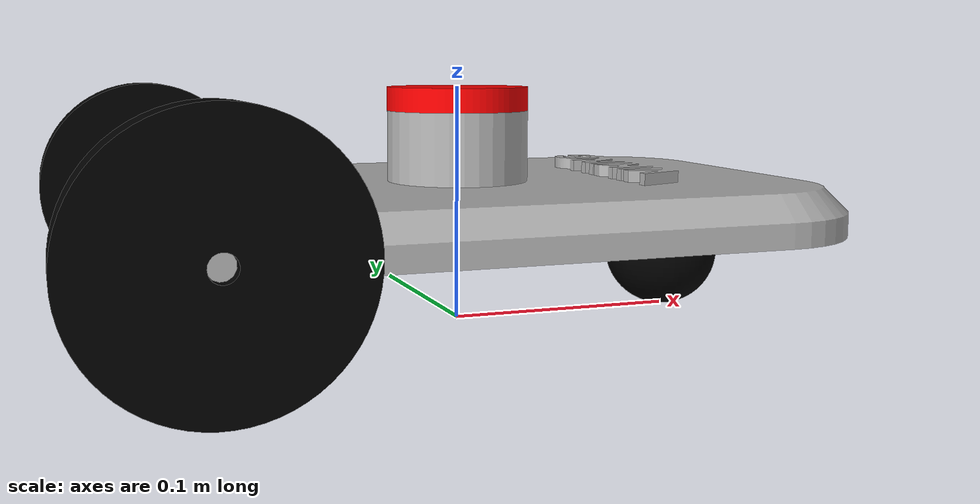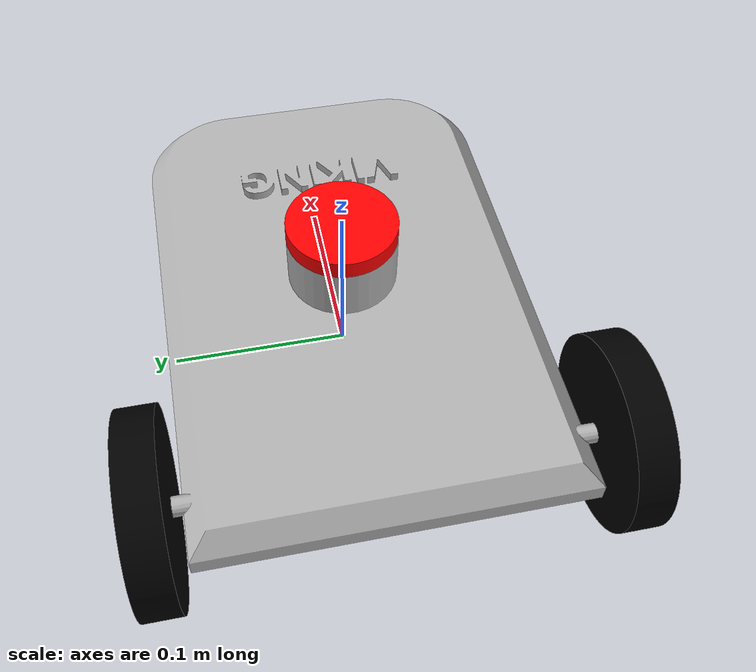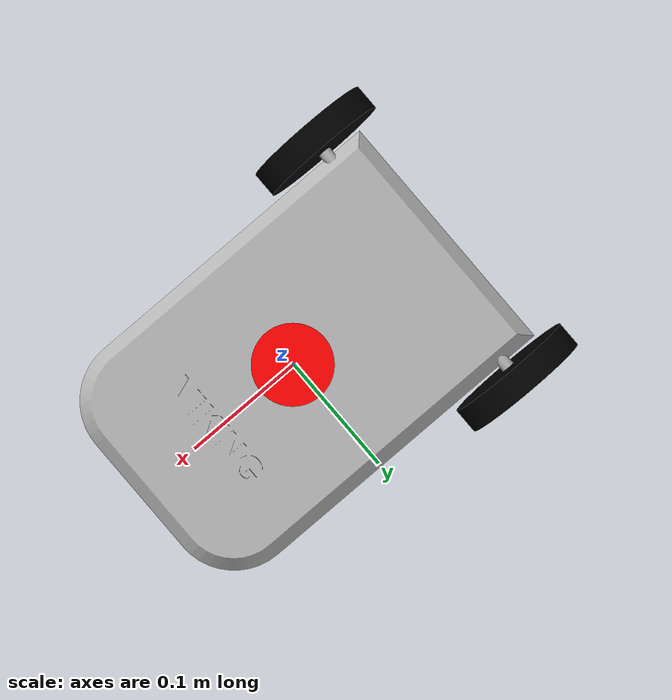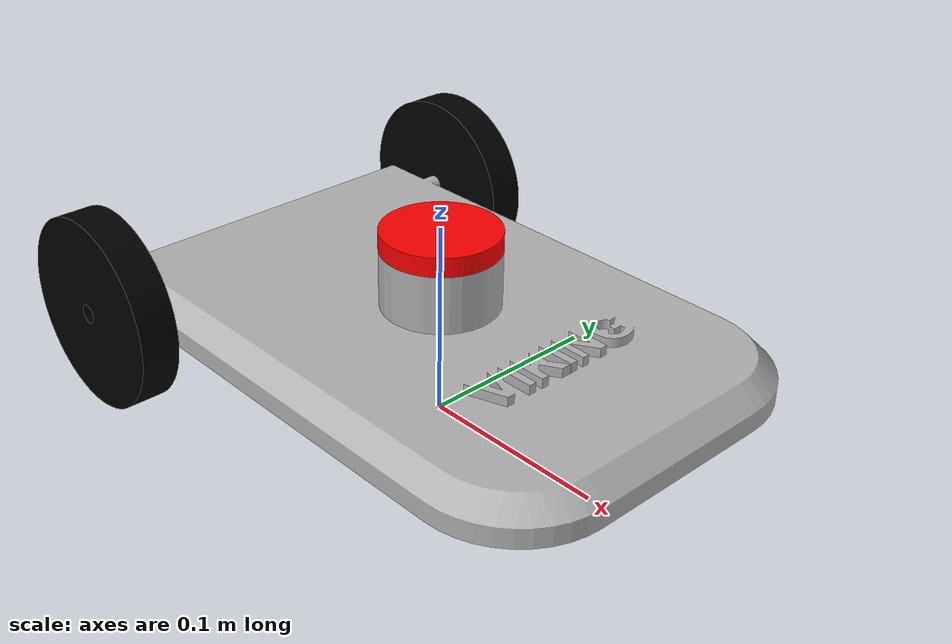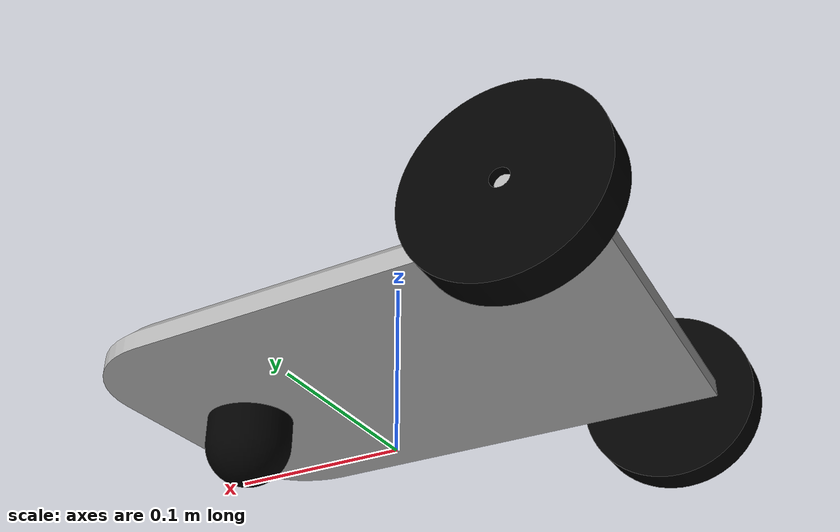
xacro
<?xml version="1.0" ?>
<robot name="nbot" xmlns:xacro="http://www.ros.org/wiki/xacro">

<xacro:include filename="$(find nbot_description)/urdf/materials.xacro" />
<xacro:include filename="$(find nbot_description)/urdf/nbot.trans" />
<xacro:include filename="$(find nbot_description)/urdf/nbot.gazebo" />
<link name="base_link">
  <inertial>
    <origin xyz="-0.002225808134467124 5.387398035171918e-06 0.05152529612945843" rpy="0 0 0"/>
    <mass value="9.612754025416804"/>
    <inertia ixx="0.028823" iyy="0.064259" izz="0.091602" ixy="-4e-06" iyz="-1e-06" ixz="-8.2e-05"/>
  </inertial>
  <visual>
    <origin xyz="0 0 0" rpy="0 0 0"/>
    <geometry>
      <mesh filename="package://nbot_description/meshes/base_link.stl" scale="0.001 0.001 0.001"/>
    </geometry>
    <material name="silver"/>
  </visual>
  <collision>
    <origin xyz="0 0 0" rpy="0 0 0"/>
    <geometry>
      <mesh filename="package://nbot_description/meshes/base_link.stl" scale="0.001 0.001 0.001"/>
    </geometry>
  </collision>
</link>

<link name="right_wheel_1">
  <inertial>
    <origin xyz="-5.245803791353865e-15 0.0049999999999999906 6.938893903907228e-18" rpy="0 0 0"/>
    <mass value="1.2207443653686525"/>
    <inertia ixx="0.000811" iyy="0.001541" izz="0.000811" ixy="0.0" iyz="-0.0" ixz="0.0"/>
  </inertial>
  <visual>
    <origin xyz="0.12 0.12 -0.05" rpy="0 0 0"/>
    <geometry>
      <mesh filename="package://nbot_description/meshes/right_wheel_1.stl" scale="0.001 0.001 0.001"/>
    </geometry>
    <material name="black"/>
  </visual>
  <collision>
    <origin xyz="0.12 0.12 -0.05" rpy="0 0 0"/>
    <geometry>
      <mesh filename="package://nbot_description/meshes/right_wheel_1.stl" scale="0.001 0.001 0.001"/>
    </geometry>
  </collision>
</link>

<link name="lefft_wheel_1">
  <inertial>
    <origin xyz="-5.245803791353865e-15 -0.005000000000000018 6.938893903907228e-18" rpy="0 0 0"/>
    <mass value="1.2207443653686525"/>
    <inertia ixx="0.000811" iyy="0.001541" izz="0.000811" ixy="0.0" iyz="-0.0" ixz="0.0"/>
  </inertial>
  <visual>
    <origin xyz="0.12 -0.12 -0.05" rpy="0 0 0"/>
    <geometry>
      <mesh filename="package://nbot_description/meshes/lefft_wheel_1.stl" scale="0.001 0.001 0.001"/>
    </geometry>
    <material name="black"/>
  </visual>
  <collision>
    <origin xyz="0.12 -0.12 -0.05" rpy="0 0 0"/>
    <geometry>
      <mesh filename="package://nbot_description/meshes/lefft_wheel_1.stl" scale="0.001 0.001 0.001"/>
    </geometry>
  </collision>
</link>

<link name="lidar_1">
  <inertial>
    <origin xyz="0.0 0.0 0.005000000000000018" rpy="0 0 0"/>
    <mass value="0.22195352097611892"/>
    <inertia ixx="5.2e-05" iyy="5.2e-05" izz="0.0001" ixy="0.0" iyz="-0.0" ixz="-0.0"/>
  </inertial>
  <visual>
    <origin xyz="-0.0 -0.0 -0.12" rpy="0 0 0"/>
    <geometry>
      <mesh filename="package://nbot_description/meshes/lidar_1.stl" scale="0.001 0.001 0.001"/>
    </geometry>
    <material name="red"/>
  </visual>
  <collision>
    <origin xyz="-0.0 -0.0 -0.12" rpy="0 0 0"/>
    <geometry>
      <mesh filename="package://nbot_description/meshes/lidar_1.stl" scale="0.001 0.001 0.001"/>
    </geometry>
  </collision>
</link>

<link name="castor_wheel_1">
  <inertial>
    <origin xyz="-0.05000000000000002 -4.57107086851739e-18 -0.01638157894736842" rpy="0 0 0"/>
    <mass value="0.4880922336280392"/>
    <inertia ixx="0.000117" iyy="0.000117" izz="0.000136" ixy="-0.0" iyz="0.0" ixz="-0.0"/>
  </inertial>
  <visual>
    <origin xyz="-0.15 -0.0 -0.04" rpy="0 0 0"/>
    <geometry>
      <mesh filename="package://nbot_description/meshes/castor_wheel_1.stl" scale="0.001 0.001 0.001"/>
    </geometry>
    <material name="black"/>
  </visual>
  <collision>
    <origin xyz="-0.15 -0.0 -0.04" rpy="0 0 0"/>
    <geometry>
      <mesh filename="package://nbot_description/meshes/castor_wheel_1.stl" scale="0.001 0.001 0.001"/>
    </geometry>
  </collision>
</link>

<joint name="right_wheel_joint" type="continuous">
  <origin xyz="-0.12 -0.12 0.05" rpy="0 0 0"/>
  <parent link="base_link"/>
  <child link="right_wheel_1"/>
  <axis xyz="0.0 1.0 0.0"/>
</joint>

<joint name="left_wheel_joint" type="continuous">
  <origin xyz="-0.12 0.12 0.05" rpy="0 0 0"/>
  <parent link="base_link"/>
  <child link="lefft_wheel_1"/>
  <axis xyz="0.0 1.0 0.0"/>
</joint>

<joint name="lidar_joint" type="fixed">
  <origin xyz="0.0 0.0 0.12" rpy="0 0 0"/>
  <parent link="base_link"/>
  <child link="lidar_1"/>
</joint>

<joint name=" castor_joint" type="fixed">
  <origin xyz="0.15 0.0 0.04" rpy="0 0 0"/>
  <parent link="base_link"/>
  <child link="castor_wheel_1"/>
</joint>

</robot>

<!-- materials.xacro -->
<robot name="nbot" xmlns:xacro="http://www.ros.org/wiki/xacro" >

<material name="silver">
  <color rgba="0.700 0.700 0.700 1.000"/>
</material>
<material name="black">
  <color rgba="0.0 0.0 0.0 1.000"/>
</material>
<material name="red">
  <color rgba="1.0 0.0 0.0 1.000"/>
</material>
</robot>

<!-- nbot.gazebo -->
<robot name="nbot" xmlns:xacro="http://www.ros.org/wiki/xacro" >

<xacro:property name="body_color" value="Gazebo/Red" />
<xacro:property name="wheel_color" value="Gazebo/Black" />
<xacro:property name="castor" value="Gazebo/Gold" />
<xacro:property name="lidar" value="Gazebo/SkyBlue" />

<gazebo>
  <plugin name="control" filename="libgazebo_ros_control.so"/>
</gazebo>
<gazebo reference="base_link">
  <material>${body_color}</material>
  <mu1>0.2</mu1>
  <mu2>0.2</mu2>
  <selfCollide>true</selfCollide>
  <gravity>true</gravity>
</gazebo>

<gazebo reference="right_wheel_1">
  <material>${wheel_color}</material>
  <mu1>10</mu1>
  <mu2>10</mu2>
  <selfCollide>true</selfCollide>
</gazebo>

<gazebo reference="lefft_wheel_1">
  <material>${wheel_color}</material>
  <mu1>10</mu1>
  <mu2>10</mu2>
  <selfCollide>true</selfCollide>
</gazebo>

<gazebo reference="lidar_1">
  <material>${lidar}</material>
  <mu1>0.2</mu1>
  <mu2>0.2</mu2>
  <selfCollide>true</selfCollide>
</gazebo>

<gazebo reference="castor_wheel_1">
  <material>${castor}</material>
  <mu1>0.2</mu1>
  <mu2>0.2</mu2>
  <selfCollide>true</selfCollide>
</gazebo>

<gazebo>
  <plugin name="differential_drive_controller" filename="libgazebo_ros_diff_drive.so">

    <!-- Plugin update rate in Hz -->
    <updateRate>10</updateRate>

    <!-- Name of left joint, defaults to `left_joint` -->
    <leftJoint>left_wheel_joint</leftJoint>

    <!-- Name of right joint, defaults to `right_joint` -->
    <rightJoint>right_wheel_joint</rightJoint>

    <!-- The distance from the center of one wheel to the other, in meters, defaults to 0.34 m -->
    <wheelSeparation>0.210</wheelSeparation>

    <!-- Diameter of the wheels, in meters, defaults to 0.15 m -->
    <wheelDiameter>0.10</wheelDiameter>

    <!-- Wheel acceleration, in rad/s^2, defaults to 0.0 rad/s^2 -->
    <wheelAcceleration>1.0</wheelAcceleration>

    <!-- Maximum torque which the wheels can produce, in Nm, defaults to 5 Nm -->
    <wheelTorque>20</wheelTorque>

    <!-- Topic to receive geometry_msgs/Twist message commands, defaults to `cmd_vel` -->
    <commandTopic>cmd_vel</commandTopic>

    <!-- Topic to publish nav_msgs/Odometry messages, defaults to `odom` -->
    <odometryTopic>odom</odometryTopic>

    <!-- Odometry frame, defaults to `odom` -->
    <odometryFrame>odom</odometryFrame>

    <!-- Robot frame to calculate odometry from, defaults to `base_footprint` -->
    <robotBaseFrame>base_link</robotBaseFrame>

    <!-- Odometry source, 0 for ENCODER, 1 for WORLD, defaults to WORLD -->
    <odometrySource>1</odometrySource>

    <!-- Set to true to publish transforms for the wheel links, defaults to false -->
    <publishWheelTF>true</publishWheelTF>

    <!-- Set to true to publish transforms for the odometry, defaults to true -->
    <publishOdom>true</publishOdom>

    <!-- Set to true to publish sensor_msgs/JointState on /joint_states for the wheel joints, defaults to false -->
    <publishWheelJointState>true</publishWheelJointState>

    <!-- Set to true to swap right and left wheels, defaults to true -->
    <legacyMode>false</legacyMode>
  </plugin>
</gazebo>
<gazebo reference="lidar_1">
    <sensor type="ray" name="head_hokuyo_sensor">
      <pose>0 0 0 0 0 0</pose>
      <visualize>false</visualize>
      <update_rate>40</update_rate>
      <ray>
        <scan>
          <horizontal>
            <samples>720</samples>
            <resolution>1</resolution>
            <min_angle>-3.14</min_angle>
            <max_angle>3.140</max_angle>
          </horizontal>
        </scan>
        <range>
          <min>0.10</min>
          <max>30.0</max>
          <resolution>0.01</resolution>
        </range>
        <noise>
          <type>gaussian</type>
          <mean>0.0</mean>
          <stddev>0.01</stddev>
        </noise>
      </ray>
      <plugin name="gazebo_ros_head_hokuyo_controller" filename="libgazebo_ros_laser.so">
        <topicName>/scan</topicName>
        <frameName>lidar_1</frameName>
      </plugin>
    </sensor>
  </gazebo>
</robot>
